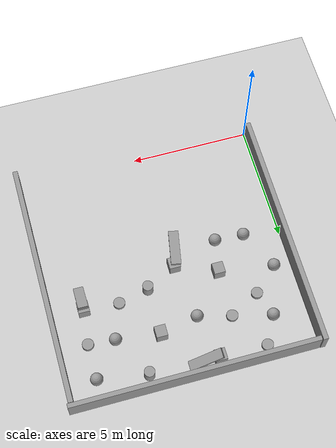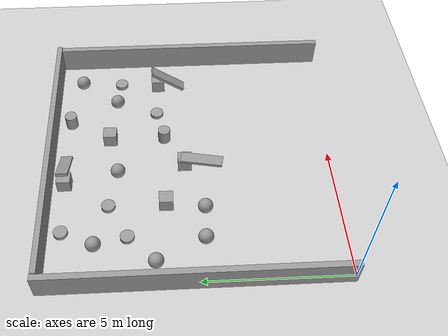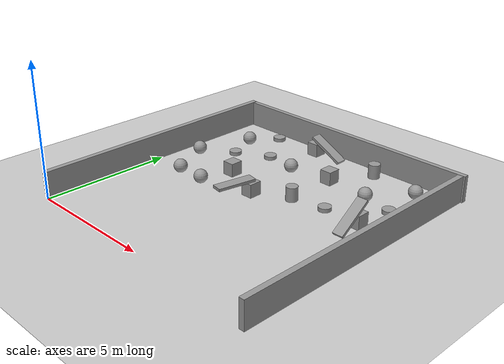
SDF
<sdf version="1.6">
 <world name="default">
  <model name="ground_plane">
   <static>1</static>
   <link name="link">
    <collision name="collision">
     <geometry><plane><normal>0 0 1</normal><size>100 100</size></plane></geometry>
     <surface><friction><ode><mu>100</mu><mu2>50</mu2></ode></friction></surface>
    </collision>
    <visual name="visual">
     <cast_shadows>0</cast_shadows>
     <geometry><plane><normal>0 0 1</normal><size>100 100</size></plane></geometry>
     <material>
      <script><uri>file://media/materials/scripts/gazebo.material</uri><name>Gazebo/Grey</name></script>
     </material>
    </visual>
   </link>
  </model>
  <model name="object4_clone">
   <link name="link">
    <inertial>
     <mass>1</mass>
     <inertia><ixx>0.1</ixx><ixy>0</ixy><ixz>0</ixz><iyy>0.1</iyy><iyz>0</iyz><izz>0.1</izz></inertia>
    </inertial>
    <visual name="visual">
     <geometry><sphere><radius>0.260368</radius></sphere></geometry>
     <material>
      <script><name>Gazebo/Grey</name><uri>file://media/materials/scripts/gazebo.material</uri></script>
      <ambient>0.3 0.3 0.3 1</ambient>
      <diffuse>0.7 0.7 0.7 1</diffuse>
      <specular>0.01 0.01 0.01 1</specular>
      <emissive>0 0 0 1</emissive>
     </material>
    </visual>
    <collision name="collision">
     <geometry><sphere><radius>0.260368</radius></sphere></geometry>
     <surface>
      <friction>
       <ode><mu>1</mu><mu2>1</mu2><fdir1>0 0 0</fdir1><slip1>0</slip1><slip2>0</slip2></ode>
       <torsional>
        <coefficient>1</coefficient>
        <patch_radius>0</patch_radius>
        <surface_radius>0</surface_radius>
        <use_patch_radius>1</use_patch_radius>
        <ode><slip>0</slip></ode>
       </torsional>
      </friction>
      <bounce><restitution_coefficient>0</restitution_coefficient><threshold>1e+06</threshold></bounce>
      <contact>
       <collide_without_contact>0</collide_without_contact>
       <collide_without_contact_bitmask>1</collide_without_contact_bitmask>
       <collide_bitmask>1</collide_bitmask>
       <ode>
        <soft_cfm>0</soft_cfm>
        <soft_erp>0.2</soft_erp>
        <kp>1e+13</kp>
        <kd>1</kd>
        <max_vel>0.01</max_vel>
        <min_depth>0</min_depth>
       </ode>
       <bullet>
        <split_impulse>1</split_impulse>
        <split_impulse_penetration_threshold>-0.01</split_impulse_penetration_threshold>
        <soft_cfm>0</soft_cfm>
        <soft_erp>0.2</soft_erp>
        <kp>1e+13</kp>
        <kd>1</kd>
       </bullet>
      </contact>
     </surface>
    </collision>
   </link>
   <static>1</static>
   <pose>2.73638 4.65874 0.260368 0 -0 0</pose>
  </model>
  <model name="object4_clone_0">
   <link name="link">
    <inertial>
     <mass>1</mass>
     <inertia><ixx>0.1</ixx><ixy>0</ixy><ixz>0</ixz><iyy>0.1</iyy><iyz>0</iyz><izz>0.1</izz></inertia>
    </inertial>
    <visual name="visual">
     <geometry><sphere><radius>0.260368</radius></sphere></geometry>
     <material>
      <script><name>Gazebo/Grey</name><uri>file://media/materials/scripts/gazebo.material</uri></script>
      <ambient>0.3 0.3 0.3 1</ambient>
      <diffuse>0.7 0.7 0.7 1</diffuse>
      <specular>0.01 0.01 0.01 1</specular>
      <emissive>0 0 0 1</emissive>
     </material>
    </visual>
    <collision name="collision">
     <geometry><sphere><radius>0.260368</radius></sphere></geometry>
     <surface>
      <friction>
       <ode><mu>1</mu><mu2>1</mu2><fdir1>0 0 0</fdir1><slip1>0</slip1><slip2>0</slip2></ode>
       <torsional>
        <coefficient>1</coefficient>
        <patch_radius>0</patch_radius>
        <surface_radius>0</surface_radius>
        <use_patch_radius>1</use_patch_radius>
        <ode><slip>0</slip></ode>
       </torsional>
      </friction>
      <bounce><restitution_coefficient>0</restitution_coefficient><threshold>1e+06</threshold></bounce>
      <contact>
       <collide_without_contact>0</collide_without_contact>
       <collide_without_contact_bitmask>1</collide_without_contact_bitmask>
       <collide_bitmask>1</collide_bitmask>
       <ode>
        <soft_cfm>0</soft_cfm>
        <soft_erp>0.2</soft_erp>
        <kp>1e+13</kp>
        <kd>1</kd>
        <max_vel>0.01</max_vel>
        <min_depth>0</min_depth>
       </ode>
       <bullet>
        <split_impulse>1</split_impulse>
        <split_impulse_penetration_threshold>-0.01</split_impulse_penetration_threshold>
        <soft_cfm>0</soft_cfm>
        <soft_erp>0.2</soft_erp>
        <kp>1e+13</kp>
        <kd>1</kd>
       </bullet>
      </contact>
     </surface>
    </collision>
   </link>
   <static>1</static>
   <pose>1.5218 4.71849 0.260368 0 -0 0</pose>
  </model>
  <model name="wall2">
   <link name="link">
    <inertial>
     <mass>1</mass>
     <inertia>
      <ixx>0.166667</ixx>
      <ixy>0</ixy>
      <ixz>0</ixz>
      <iyy>0.166667</iyy>
      <iyz>0</iyz>
      <izz>0.166667</izz>
     </inertia>
    </inertial>
    <visual name="visual">
     <geometry><box><size>0.209732 10.1924 1</size></box></geometry>
     <material>
      <script><name>Gazebo/Grey</name><uri>file://media/materials/scripts/gazebo.material</uri></script>
      <ambient>0.3 0.3 0.3 1</ambient>
      <diffuse>0.7 0.7 0.7 1</diffuse>
      <specular>0.01 0.01 0.01 1</specular>
      <emissive>0 0 0 1</emissive>
     </material>
    </visual>
    <collision name="collision">
     <geometry><box><size>0.209732 10.1924 1</size></box></geometry>
     <surface>
      <friction>
       <ode><mu>1</mu><mu2>1</mu2><fdir1>0 0 0</fdir1><slip1>0</slip1><slip2>0</slip2></ode>
       <torsional>
        <coefficient>1</coefficient>
        <patch_radius>0</patch_radius>
        <surface_radius>0</surface_radius>
        <use_patch_radius>1</use_patch_radius>
        <ode><slip>0</slip></ode>
       </torsional>
      </friction>
      <bounce><restitution_coefficient>0</restitution_coefficient><threshold>1e+06</threshold></bounce>
      <contact>
       <collide_without_contact>0</collide_without_contact>
       <collide_without_contact_bitmask>1</collide_without_contact_bitmask>
       <collide_bitmask>1</collide_bitmask>
       <ode>
        <soft_cfm>0</soft_cfm>
        <soft_erp>0.2</soft_erp>
        <kp>1e+13</kp>
        <kd>1</kd>
        <max_vel>0.01</max_vel>
        <min_depth>0</min_depth>
       </ode>
       <bullet>
        <split_impulse>1</split_impulse>
        <split_impulse_penetration_threshold>-0.01</split_impulse_penetration_threshold>
        <soft_cfm>0</soft_cfm>
        <soft_erp>0.2</soft_erp>
        <kp>1e+13</kp>
        <kd>1</kd>
       </bullet>
      </contact>
     </surface>
    </collision>
   </link>
   <static>1</static>
   <pose>-0.109062 5.11991 0.5 0 -0 0</pose>
  </model>
  <model name="wall2_clone">
   <link name="link">
    <inertial>
     <mass>1</mass>
     <inertia>
      <ixx>0.166667</ixx>
      <ixy>0</ixy>
      <ixz>0</ixz>
      <iyy>0.166667</iyy>
      <iyz>0</iyz>
      <izz>0.166667</izz>
     </inertia>
    </inertial>
    <visual name="visual">
     <geometry><box><size>0.209732 10.3294 1</size></box></geometry>
     <material>
      <script><name>Gazebo/Grey</name><uri>file://media/materials/scripts/gazebo.material</uri></script>
      <ambient>0.3 0.3 0.3 1</ambient>
      <diffuse>0.7 0.7 0.7 1</diffuse>
      <specular>0.01 0.01 0.01 1</specular>
      <emissive>0 0 0 1</emissive>
     </material>
    </visual>
    <collision name="collision">
     <geometry><box><size>0.209732 10.3294 1</size></box></geometry>
     <surface>
      <friction>
       <ode><mu>1</mu><mu2>1</mu2><fdir1>0 0 0</fdir1><slip1>0</slip1><slip2>0</slip2></ode>
       <torsional>
        <coefficient>1</coefficient>
        <patch_radius>0</patch_radius>
        <surface_radius>0</surface_radius>
        <use_patch_radius>1</use_patch_radius>
        <ode><slip>0</slip></ode>
       </torsional>
      </friction>
      <bounce><restitution_coefficient>0</restitution_coefficient><threshold>1e+06</threshold></bounce>
      <contact>
       <collide_without_contact>0</collide_without_contact>
       <collide_without_contact_bitmask>1</collide_without_contact_bitmask>
       <collide_bitmask>1</collide_bitmask>
       <ode>
        <soft_cfm>0</soft_cfm>
        <soft_erp>0.2</soft_erp>
        <kp>1e+13</kp>
        <kd>1</kd>
        <max_vel>0.01</max_vel>
        <min_depth>0</min_depth>
       </ode>
       <bullet>
        <split_impulse>1</split_impulse>
        <split_impulse_penetration_threshold>-0.01</split_impulse_penetration_threshold>
        <soft_cfm>0</soft_cfm>
        <soft_erp>0.2</soft_erp>
        <kp>1e+13</kp>
        <kd>1</kd>
       </bullet>
      </contact>
     </surface>
    </collision>
   </link>
   <static>1</static>
   <pose>10.1152 4.83597 0.5 0 -0 0</pose>
  </model>
  <model name="wall1_0">
   <link name="link">
    <inertial>
     <mass>1</mass>
     <inertia>
      <ixx>0.166667</ixx>
      <ixy>0</ixy>
      <ixz>0</ixz>
      <iyy>0.166667</iyy>
      <iyz>0</iyz>
      <izz>0.166667</izz>
     </inertia>
    </inertial>
    <visual name="visual">
     <geometry><box><size>10.251 0.189922 1</size></box></geometry>
     <material>
      <script><name>Gazebo/Grey</name><uri>file://media/materials/scripts/gazebo.material</uri></script>
      <ambient>0.3 0.3 0.3 1</ambient>
      <diffuse>0.7 0.7 0.7 1</diffuse>
      <specular>0.01 0.01 0.01 1</specular>
      <emissive>0 0 0 1</emissive>
     </material>
    </visual>
    <collision name="collision">
     <geometry><box><size>10.251 0.189922 1</size></box></geometry>
     <surface>
      <friction>
       <ode><mu>1</mu><mu2>1</mu2><fdir1>0 0 0</fdir1><slip1>0</slip1><slip2>0</slip2></ode>
       <torsional>
        <coefficient>1</coefficient>
        <patch_radius>0</patch_radius>
        <surface_radius>0</surface_radius>
        <use_patch_radius>1</use_patch_radius>
        <ode><slip>0</slip></ode>
       </torsional>
      </friction>
      <bounce><restitution_coefficient>0</restitution_coefficient><threshold>1e+06</threshold></bounce>
      <contact>
       <collide_without_contact>0</collide_without_contact>
       <collide_without_contact_bitmask>1</collide_without_contact_bitmask>
       <collide_bitmask>1</collide_bitmask>
       <ode>
        <soft_cfm>0</soft_cfm>
        <soft_erp>0.2</soft_erp>
        <kp>1e+13</kp>
        <kd>1</kd>
        <max_vel>0.01</max_vel>
        <min_depth>0</min_depth>
       </ode>
       <bullet>
        <split_impulse>1</split_impulse>
        <split_impulse_penetration_threshold>-0.01</split_impulse_penetration_threshold>
        <soft_cfm>0</soft_cfm>
        <soft_erp>0.2</soft_erp>
        <kp>1e+13</kp>
        <kd>1</kd>
       </bullet>
      </contact>
     </surface>
    </collision>
   </link>
   <static>1</static>
   <pose>5.153 10.11 0.5 0 -0 0</pose>
  </model>
  <model name="object4_clone_3">
   <link name="link">
    <inertial>
     <mass>1</mass>
     <inertia><ixx>0.1</ixx><ixy>0</ixy><ixz>0</ixz><iyy>0.1</iyy><iyz>0</iyz><izz>0.1</izz></inertia>
    </inertial>
    <visual name="visual">
     <geometry><sphere><radius>0.260368</radius></sphere></geometry>
     <material>
      <script><name>Gazebo/Grey</name><uri>file://media/materials/scripts/gazebo.material</uri></script>
      <ambient>0.3 0.3 0.3 1</ambient>
      <diffuse>0.7 0.7 0.7 1</diffuse>
      <specular>0.01 0.01 0.01 1</specular>
      <emissive>0 0 0 1</emissive>
     </material>
    </visual>
    <collision name="collision">
     <geometry><sphere><radius>0.260368</radius></sphere></geometry>
     <surface>
      <friction>
       <ode><mu>1</mu><mu2>1</mu2><fdir1>0 0 0</fdir1><slip1>0</slip1><slip2>0</slip2></ode>
       <torsional>
        <coefficient>1</coefficient>
        <patch_radius>0</patch_radius>
        <surface_radius>0</surface_radius>
        <use_patch_radius>1</use_patch_radius>
        <ode><slip>0</slip></ode>
       </torsional>
      </friction>
      <bounce><restitution_coefficient>0</restitution_coefficient><threshold>1e+06</threshold></bounce>
      <contact>
       <collide_without_contact>0</collide_without_contact>
       <collide_without_contact_bitmask>1</collide_without_contact_bitmask>
       <collide_bitmask>1</collide_bitmask>
       <ode>
        <soft_cfm>0</soft_cfm>
        <soft_erp>0.2</soft_erp>
        <kp>1e+13</kp>
        <kd>1</kd>
        <max_vel>0.01</max_vel>
        <min_depth>0</min_depth>
       </ode>
       <bullet>
        <split_impulse>1</split_impulse>
        <split_impulse_penetration_threshold>-0.01</split_impulse_penetration_threshold>
        <soft_cfm>0</soft_cfm>
        <soft_erp>0.2</soft_erp>
        <kp>1e+13</kp>
        <kd>1</kd>
       </bullet>
      </contact>
     </surface>
    </collision>
   </link>
   <static>1</static>
   <pose>7.81479 7.76646 0.247825 0 -0 0</pose>
  </model>
  <model name="object4_clone_4">
   <link name="link">
    <inertial>
     <mass>1</mass>
     <inertia><ixx>0.1</ixx><ixy>0</ixy><ixz>0</ixz><iyy>0.1</iyy><iyz>0</iyz><izz>0.1</izz></inertia>
    </inertial>
    <visual name="visual">
     <geometry><sphere><radius>0.260368</radius></sphere></geometry>
     <material>
      <script><name>Gazebo/Grey</name><uri>file://media/materials/scripts/gazebo.material</uri></script>
      <ambient>0.3 0.3 0.3 1</ambient>
      <diffuse>0.7 0.7 0.7 1</diffuse>
      <specular>0.01 0.01 0.01 1</specular>
      <emissive>0 0 0 1</emissive>
     </material>
    </visual>
    <collision name="collision">
     <geometry><sphere><radius>0.260368</radius></sphere></geometry>
     <surface>
      <friction>
       <ode><mu>1</mu><mu2>1</mu2><fdir1>0 0 0</fdir1><slip1>0</slip1><slip2>0</slip2></ode>
       <torsional>
        <coefficient>1</coefficient>
        <patch_radius>0</patch_radius>
        <surface_radius>0</surface_radius>
        <use_patch_radius>1</use_patch_radius>
        <ode><slip>0</slip></ode>
       </torsional>
      </friction>
      <bounce><restitution_coefficient>0</restitution_coefficient><threshold>1e+06</threshold></bounce>
      <contact>
       <collide_without_contact>0</collide_without_contact>
       <collide_without_contact_bitmask>1</collide_without_contact_bitmask>
       <collide_bitmask>1</collide_bitmask>
       <ode>
        <soft_cfm>0</soft_cfm>
        <soft_erp>0.2</soft_erp>
        <kp>1e+13</kp>
        <kd>1</kd>
        <max_vel>0.01</max_vel>
        <min_depth>0</min_depth>
       </ode>
       <bullet>
        <split_impulse>1</split_impulse>
        <split_impulse_penetration_threshold>-0.01</split_impulse_penetration_threshold>
        <soft_cfm>0</soft_cfm>
        <soft_erp>0.2</soft_erp>
        <kp>1e+13</kp>
        <kd>1</kd>
       </bullet>
      </contact>
     </surface>
    </collision>
   </link>
   <static>1</static>
   <pose>4.39446 7.68427 0.247825 0 -0 0</pose>
  </model>
  <model name="object4_clone_5">
   <link name="link">
    <inertial>
     <mass>1</mass>
     <inertia><ixx>0.1</ixx><ixy>0</ixy><ixz>0</ixz><iyy>0.1</iyy><iyz>0</iyz><izz>0.1</izz></inertia>
    </inertial>
    <visual name="visual">
     <geometry><sphere><radius>0.260368</radius></sphere></geometry>
     <material>
      <script><name>Gazebo/Grey</name><uri>file://media/materials/scripts/gazebo.material</uri></script>
      <ambient>0.3 0.3 0.3 1</ambient>
      <diffuse>0.7 0.7 0.7 1</diffuse>
      <specular>0.01 0.01 0.01 1</specular>
      <emissive>0 0 0 1</emissive>
     </material>
    </visual>
    <collision name="collision">
     <geometry><sphere><radius>0.260368</radius></sphere></geometry>
     <surface>
      <friction>
       <ode><mu>1</mu><mu2>1</mu2><fdir1>0 0 0</fdir1><slip1>0</slip1><slip2>0</slip2></ode>
       <torsional>
        <coefficient>1</coefficient>
        <patch_radius>0</patch_radius>
        <surface_radius>0</surface_radius>
        <use_patch_radius>1</use_patch_radius>
        <ode><slip>0</slip></ode>
       </torsional>
      </friction>
      <bounce><restitution_coefficient>0</restitution_coefficient><threshold>1e+06</threshold></bounce>
      <contact>
       <collide_without_contact>0</collide_without_contact>
       <collide_without_contact_bitmask>1</collide_without_contact_bitmask>
       <collide_bitmask>1</collide_bitmask>
       <ode>
        <soft_cfm>0</soft_cfm>
        <soft_erp>0.2</soft_erp>
        <kp>1e+13</kp>
        <kd>1</kd>
        <max_vel>0.01</max_vel>
        <min_depth>0</min_depth>
       </ode>
       <bullet>
        <split_impulse>1</split_impulse>
        <split_impulse_penetration_threshold>-0.01</split_impulse_penetration_threshold>
        <soft_cfm>0</soft_cfm>
        <soft_erp>0.2</soft_erp>
        <kp>1e+13</kp>
        <kd>1</kd>
       </bullet>
      </contact>
     </surface>
    </collision>
   </link>
   <static>1</static>
   <pose>1.40837 8.43712 0.247825 0 -0 0</pose>
  </model>
  <model name="object4_clone_6">
   <link name="link">
    <inertial>
     <mass>1</mass>
     <inertia><ixx>0.1</ixx><ixy>0</ixy><ixz>0</ixz><iyy>0.1</iyy><iyz>0</iyz><izz>0.1</izz></inertia>
    </inertial>
    <visual name="visual">
     <geometry><sphere><radius>0.260368</radius></sphere></geometry>
     <material>
      <script><name>Gazebo/Grey</name><uri>file://media/materials/scripts/gazebo.material</uri></script>
      <ambient>0.3 0.3 0.3 1</ambient>
      <diffuse>0.7 0.7 0.7 1</diffuse>
      <specular>0.01 0.01 0.01 1</specular>
      <emissive>0 0 0 1</emissive>
     </material>
    </visual>
    <collision name="collision">
     <geometry><sphere><radius>0.260368</radius></sphere></geometry>
     <surface>
      <friction>
       <ode><mu>1</mu><mu2>1</mu2><fdir1>0 0 0</fdir1><slip1>0</slip1><slip2>0</slip2></ode>
       <torsional>
        <coefficient>1</coefficient>
        <patch_radius>0</patch_radius>
        <surface_radius>0</surface_radius>
        <use_patch_radius>1</use_patch_radius>
        <ode><slip>0</slip></ode>
       </torsional>
      </friction>
      <bounce><restitution_coefficient>0</restitution_coefficient><threshold>1e+06</threshold></bounce>
      <contact>
       <collide_without_contact>0</collide_without_contact>
       <collide_without_contact_bitmask>1</collide_without_contact_bitmask>
       <collide_bitmask>1</collide_bitmask>
       <ode>
        <soft_cfm>0</soft_cfm>
        <soft_erp>0.2</soft_erp>
        <kp>1e+13</kp>
        <kd>1</kd>
        <max_vel>0.01</max_vel>
        <min_depth>0</min_depth>
       </ode>
       <bullet>
        <split_impulse>1</split_impulse>
        <split_impulse_penetration_threshold>-0.01</split_impulse_penetration_threshold>
        <soft_cfm>0</soft_cfm>
        <soft_erp>0.2</soft_erp>
        <kp>1e+13</kp>
        <kd>1</kd>
       </bullet>
      </contact>
     </surface>
    </collision>
   </link>
   <static>1</static>
   <pose>8.93097 9.16442 0.247825 0 -0 0</pose>
  </model>
  <model name="object4_clone_8">
   <link name="link">
    <inertial>
     <mass>1</mass>
     <inertia><ixx>0.1</ixx><ixy>0</ixy><ixz>0</ixz><iyy>0.1</iyy><iyz>0</iyz><izz>0.1</izz></inertia>
    </inertial>
    <visual name="visual">
     <geometry><sphere><radius>0.260368</radius></sphere></geometry>
     <material>
      <script><name>Gazebo/Grey</name><uri>file://media/materials/scripts/gazebo.material</uri></script>
      <ambient>0.3 0.3 0.3 1</ambient>
      <diffuse>0.7 0.7 0.7 1</diffuse>
      <specular>0.01 0.01 0.01 1</specular>
      <emissive>0 0 0 1</emissive>
     </material>
    </visual>
    <collision name="collision">
     <geometry><sphere><radius>0.260368</radius></sphere></geometry>
     <surface>
      <friction>
       <ode><mu>1</mu><mu2>1</mu2><fdir1>0 0 0</fdir1><slip1>0</slip1><slip2>0</slip2></ode>
       <torsional>
        <coefficient>1</coefficient>
        <patch_radius>0</patch_radius>
        <surface_radius>0</surface_radius>
        <use_patch_radius>1</use_patch_radius>
        <ode><slip>0</slip></ode>
       </torsional>
      </friction>
      <bounce><restitution_coefficient>0</restitution_coefficient><threshold>1e+06</threshold></bounce>
      <contact>
       <collide_without_contact>0</collide_without_contact>
       <collide_without_contact_bitmask>1</collide_without_contact_bitmask>
       <collide_bitmask>1</collide_bitmask>
       <ode>
        <soft_cfm>0</soft_cfm>
        <soft_erp>0.2</soft_erp>
        <kp>1e+13</kp>
        <kd>1</kd>
        <max_vel>0.01</max_vel>
        <min_depth>0</min_depth>
       </ode>
       <bullet>
        <split_impulse>1</split_impulse>
        <split_impulse_penetration_threshold>-0.01</split_impulse_penetration_threshold>
        <soft_cfm>0</soft_cfm>
        <soft_erp>0.2</soft_erp>
        <kp>1e+13</kp>
        <kd>1</kd>
       </bullet>
      </contact>
     </surface>
    </collision>
   </link>
   <static>1</static>
   <pose>0.711306 6.37888 0.247825 0 -0 0</pose>
  </model>
  <model name="object1_clone_0_clone_0">
   <link name="link">
    <inertial>
     <mass>1</mass>
     <inertia>
      <ixx>0.166667</ixx>
      <ixy>0</ixy>
      <ixz>0</ixz>
      <iyy>0.166667</iyy>
      <iyz>0</iyz>
      <izz>0.166667</izz>
     </inertia>
    </inertial>
    <visual name="visual">
     <geometry><box><size>0.462419 0.484025 0.518106</size></box></geometry>
     <material>
      <script><name>Gazebo/Grey</name><uri>file://media/materials/scripts/gazebo.material</uri></script>
      <ambient>0.3 0.3 0.3 1</ambient>
      <diffuse>0.7 0.7 0.7 1</diffuse>
      <specular>0.01 0.01 0.01 1</specular>
      <emissive>0 0 0 1</emissive>
     </material>
    </visual>
    <collision name="collision">
     <geometry><box><size>0.462419 0.484025 0.518106</size></box></geometry>
     <surface>
      <friction>
       <ode><mu>1</mu><mu2>1</mu2><fdir1>0 0 0</fdir1><slip1>0</slip1><slip2>0</slip2></ode>
       <torsional>
        <coefficient>1</coefficient>
        <patch_radius>0</patch_radius>
        <surface_radius>0</surface_radius>
        <use_patch_radius>1</use_patch_radius>
        <ode><slip>0</slip></ode>
       </torsional>
      </friction>
      <bounce><restitution_coefficient>0</restitution_coefficient><threshold>1e+06</threshold></bounce>
      <contact>
       <collide_without_contact>0</collide_without_contact>
       <collide_without_contact_bitmask>1</collide_without_contact_bitmask>
       <collide_bitmask>1</collide_bitmask>
       <ode>
        <soft_cfm>0</soft_cfm>
        <soft_erp>0.2</soft_erp>
        <kp>1e+13</kp>
        <kd>1</kd>
        <max_vel>0.01</max_vel>
        <min_depth>0</min_depth>
       </ode>
       <bullet>
        <split_impulse>1</split_impulse>
        <split_impulse_penetration_threshold>-0.01</split_impulse_penetration_threshold>
        <soft_cfm>0</soft_cfm>
        <soft_erp>0.2</soft_erp>
        <kp>1e+13</kp>
        <kd>1</kd>
       </bullet>
      </contact>
     </surface>
    </collision>
   </link>
   <static>1</static>
   <pose>8.75776 6.17844 0.259053 0 -0 0</pose>
  </model>
  <model name="object1_clone_0_clone_1">
   <link name="link">
    <inertial>
     <mass>1</mass>
     <inertia>
      <ixx>0.166667</ixx>
      <ixy>0</ixy>
      <ixz>0</ixz>
      <iyy>0.166667</iyy>
      <iyz>0</iyz>
      <izz>0.166667</izz>
     </inertia>
    </inertial>
    <visual name="visual">
     <geometry><box><size>0.462419 0.484025 0.518106</size></box></geometry>
     <material>
      <script><name>Gazebo/Grey</name><uri>file://media/materials/scripts/gazebo.material</uri></script>
      <ambient>0.3 0.3 0.3 1</ambient>
      <diffuse>0.7 0.7 0.7 1</diffuse>
      <specular>0.01 0.01 0.01 1</specular>
      <emissive>0 0 0 1</emissive>
     </material>
    </visual>
    <collision name="collision">
     <geometry><box><size>0.462419 0.484025 0.518106</size></box></geometry>
     <surface>
      <friction>
       <ode><mu>1</mu><mu2>1</mu2><fdir1>0 0 0</fdir1><slip1>0</slip1><slip2>0</slip2></ode>
       <torsional>
        <coefficient>1</coefficient>
        <patch_radius>0</patch_radius>
        <surface_radius>0</surface_radius>
        <use_patch_radius>1</use_patch_radius>
        <ode><slip>0</slip></ode>
       </torsional>
      </friction>
      <bounce><restitution_coefficient>0</restitution_coefficient><threshold>1e+06</threshold></bounce>
      <contact>
       <collide_without_contact>0</collide_without_contact>
       <collide_without_contact_bitmask>1</collide_without_contact_bitmask>
       <collide_bitmask>1</collide_bitmask>
       <ode>
        <soft_cfm>0</soft_cfm>
        <soft_erp>0.2</soft_erp>
        <kp>1e+13</kp>
        <kd>1</kd>
        <max_vel>0.01</max_vel>
        <min_depth>0</min_depth>
       </ode>
       <bullet>
        <split_impulse>1</split_impulse>
        <split_impulse_penetration_threshold>-0.01</split_impulse_penetration_threshold>
        <soft_cfm>0</soft_cfm>
        <soft_erp>0.2</soft_erp>
        <kp>1e+13</kp>
        <kd>1</kd>
       </bullet>
      </contact>
     </surface>
    </collision>
   </link>
   <static>1</static>
   <pose>6 8 0.259053 0 -0 0</pose>
  </model>
  <model name="object1_clone_0_clone_2">
   <link name="link">
    <inertial>
     <mass>1</mass>
     <inertia>
      <ixx>0.166667</ixx>
      <ixy>0</ixy>
      <ixz>0</ixz>
      <iyy>0.166667</iyy>
      <iyz>0</iyz>
      <izz>0.166667</izz>
     </inertia>
    </inertial>
    <visual name="visual">
     <geometry><box><size>0.462419 0.484025 0.518106</size></box></geometry>
     <material>
      <script><name>Gazebo/Grey</name><uri>file://media/materials/scripts/gazebo.material</uri></script>
      <ambient>0.3 0.3 0.3 1</ambient>
      <diffuse>0.7 0.7 0.7 1</diffuse>
      <specular>0.01 0.01 0.01 1</specular>
      <emissive>0 0 0 1</emissive>
     </material>
    </visual>
    <collision name="collision">
     <geometry><box><size>0.462419 0.484025 0.518106</size></box></geometry>
     <surface>
      <friction>
       <ode><mu>1</mu><mu2>1</mu2><fdir1>0 0 0</fdir1><slip1>0</slip1><slip2>0</slip2></ode>
       <torsional>
        <coefficient>1</coefficient>
        <patch_radius>0</patch_radius>
        <surface_radius>0</surface_radius>
        <use_patch_radius>1</use_patch_radius>
        <ode><slip>0</slip></ode>
       </torsional>
      </friction>
      <bounce><restitution_coefficient>0</restitution_coefficient><threshold>1e+06</threshold></bounce>
      <contact>
       <collide_without_contact>0</collide_without_contact>
       <collide_without_contact_bitmask>1</collide_without_contact_bitmask>
       <collide_bitmask>1</collide_bitmask>
       <ode>
        <soft_cfm>0</soft_cfm>
        <soft_erp>0.2</soft_erp>
        <kp>1e+13</kp>
        <kd>1</kd>
        <max_vel>0.01</max_vel>
        <min_depth>0</min_depth>
       </ode>
       <bullet>
        <split_impulse>1</split_impulse>
        <split_impulse_penetration_threshold>-0.01</split_impulse_penetration_threshold>
        <soft_cfm>0</soft_cfm>
        <soft_erp>0.2</soft_erp>
        <kp>1e+13</kp>
        <kd>1</kd>
       </bullet>
      </contact>
     </surface>
    </collision>
   </link>
   <static>1</static>
   <pose>3 6 0.259053 0 -0 0</pose>
  </model>
  <model name="object1_clone_0_clone_3">
   <link name="link">
    <inertial>
     <mass>1</mass>
     <inertia>
      <ixx>0.166667</ixx>
      <ixy>0</ixy>
      <ixz>0</ixz>
      <iyy>0.166667</iyy>
      <iyz>0</iyz>
      <izz>0.166667</izz>
     </inertia>
    </inertial>
    <visual name="visual">
     <geometry><box><size>0.462419 0.484025 0.518106</size></box></geometry>
     <material>
      <script><name>Gazebo/Grey</name><uri>file://media/materials/scripts/gazebo.material</uri></script>
      <ambient>0.3 0.3 0.3 1</ambient>
      <diffuse>0.7 0.7 0.7 1</diffuse>
      <specular>0.01 0.01 0.01 1</specular>
      <emissive>0 0 0 1</emissive>
     </material>
    </visual>
    <collision name="collision">
     <geometry><box><size>0.462419 0.484025 0.518106</size></box></geometry>
     <surface>
      <friction>
       <ode><mu>1</mu><mu2>1</mu2><fdir1>0 0 0</fdir1><slip1>0</slip1><slip2>0</slip2></ode>
       <torsional>
        <coefficient>1</coefficient>
        <patch_radius>0</patch_radius>
        <surface_radius>0</surface_radius>
        <use_patch_radius>1</use_patch_radius>
        <ode><slip>0</slip></ode>
       </torsional>
      </friction>
      <bounce><restitution_coefficient>0</restitution_coefficient><threshold>1e+06</threshold></bounce>
      <contact>
       <collide_without_contact>0</collide_without_contact>
       <collide_without_contact_bitmask>1</collide_without_contact_bitmask>
       <collide_bitmask>1</collide_bitmask>
       <ode>
        <soft_cfm>0</soft_cfm>
        <soft_erp>0.2</soft_erp>
        <kp>1e+13</kp>
        <kd>1</kd>
        <max_vel>0.01</max_vel>
        <min_depth>0</min_depth>
       </ode>
       <bullet>
        <split_impulse>1</split_impulse>
        <split_impulse_penetration_threshold>-0.01</split_impulse_penetration_threshold>
        <soft_cfm>0</soft_cfm>
        <soft_erp>0.2</soft_erp>
        <kp>1e+13</kp>
        <kd>1</kd>
       </bullet>
      </contact>
     </surface>
    </collision>
   </link>
   <static>1</static>
   <pose>3.992 9.56642 0.259053 0 -0 0</pose>
  </model>
  <model name="object1_clone_0_clone_4">
   <link name="link">
    <inertial>
     <mass>1</mass>
     <inertia>
      <ixx>0.166667</ixx>
      <ixy>0</ixy>
      <ixz>0</ixz>
      <iyy>0.166667</iyy>
      <iyz>0</iyz>
      <izz>0.166667</izz>
     </inertia>
    </inertial>
    <visual name="visual">
     <geometry><box><size>0.462419 0.484025 0.518106</size></box></geometry>
     <material>
      <script><name>Gazebo/Grey</name><uri>file://media/materials/scripts/gazebo.material</uri></script>
      <ambient>0.3 0.3 0.3 1</ambient>
      <diffuse>0.7 0.7 0.7 1</diffuse>
      <specular>0.01 0.01 0.01 1</specular>
      <emissive>0 0 0 1</emissive>
     </material>
    </visual>
    <collision name="collision">
     <geometry><box><size>0.462419 0.484025 0.518106</size></box></geometry>
     <surface>
      <friction>
       <ode><mu>1</mu><mu2>1</mu2><fdir1>0 0 0</fdir1><slip1>0</slip1><slip2>0</slip2></ode>
       <torsional>
        <coefficient>1</coefficient>
        <patch_radius>0</patch_radius>
        <surface_radius>0</surface_radius>
        <use_patch_radius>1</use_patch_radius>
        <ode><slip>0</slip></ode>
       </torsional>
      </friction>
      <bounce><restitution_coefficient>0</restitution_coefficient><threshold>1e+06</threshold></bounce>
      <contact>
       <collide_without_contact>0</collide_without_contact>
       <collide_without_contact_bitmask>1</collide_without_contact_bitmask>
       <collide_bitmask>1</collide_bitmask>
       <ode>
        <soft_cfm>0</soft_cfm>
        <soft_erp>0.2</soft_erp>
        <kp>1e+13</kp>
        <kd>1</kd>
        <max_vel>0.01</max_vel>
        <min_depth>0</min_depth>
       </ode>
       <bullet>
        <split_impulse>1</split_impulse>
        <split_impulse_penetration_threshold>-0.01</split_impulse_penetration_threshold>
        <soft_cfm>0</soft_cfm>
        <soft_erp>0.2</soft_erp>
        <kp>1e+13</kp>
        <kd>1</kd>
       </bullet>
      </contact>
     </surface>
    </collision>
   </link>
   <static>1</static>
   <pose>4.7008 5.29069 0.259053 0 -0 0</pose>
  </model>
  <model name="object5_clone_1">
   <link name="link">
    <inertial>
     <mass>1</mass>
     <inertia><ixx>0.145833</ixx><ixy>0</ixy><ixz>0</ixz><iyy>0.145833</iyy><iyz>0</iyz><izz>0.125</izz></inertia>
    </inertial>
    <visual name="visual">
     <geometry><cylinder><radius>0.221555</radius><length>0.542695</length></cylinder></geometry>
     <material>
      <script><name>Gazebo/Grey</name><uri>file://media/materials/scripts/gazebo.material</uri></script>
      <ambient>0.3 0.3 0.3 1</ambient>
      <diffuse>0.7 0.7 0.7 1</diffuse>
      <specular>0.01 0.01 0.01 1</specular>
      <emissive>0 0 0 1</emissive>
     </material>
    </visual>
    <collision name="collision">
     <geometry><cylinder><radius>0.221555</radius><length>0.542695</length></cylinder></geometry>
     <surface>
      <friction>
       <ode><mu>1</mu><mu2>1</mu2><fdir1>0 0 0</fdir1><slip1>0</slip1><slip2>0</slip2></ode>
       <torsional>
        <coefficient>1</coefficient>
        <patch_radius>0</patch_radius>
        <surface_radius>0</surface_radius>
        <use_patch_radius>1</use_patch_radius>
        <ode><slip>0</slip></ode>
       </torsional>
      </friction>
      <bounce><restitution_coefficient>0</restitution_coefficient><threshold>1e+06</threshold></bounce>
      <contact>
       <collide_without_contact>0</collide_without_contact>
       <collide_without_contact_bitmask>1</collide_without_contact_bitmask>
       <collide_bitmask>1</collide_bitmask>
       <ode>
        <soft_cfm>0</soft_cfm>
        <soft_erp>0.2</soft_erp>
        <kp>1e+13</kp>
        <kd>1</kd>
        <max_vel>0.01</max_vel>
        <min_depth>0</min_depth>
       </ode>
       <bullet>
        <split_impulse>1</split_impulse>
        <split_impulse_penetration_threshold>-0.01</split_impulse_penetration_threshold>
        <soft_cfm>0</soft_cfm>
        <soft_erp>0.2</soft_erp>
        <kp>1e+13</kp>
        <kd>1</kd>
       </bullet>
      </contact>
     </surface>
    </collision>
   </link>
   <static>1</static>
   <pose>6 6 0.271347 0 -0 0</pose>
  </model>
  <model name="object5_clone_4">
   <link name="link">
    <inertial>
     <mass>1</mass>
     <inertia><ixx>0.145833</ixx><ixy>0</ixy><ixz>0</ixz><iyy>0.145833</iyy><iyz>0</iyz><izz>0.125</izz></inertia>
    </inertial>
    <visual name="visual">
     <geometry><cylinder><radius>0.221555</radius><length>0.542695</length></cylinder></geometry>
     <material>
      <script><name>Gazebo/Grey</name><uri>file://media/materials/scripts/gazebo.material</uri></script>
      <ambient>0.3 0.3 0.3 1</ambient>
      <diffuse>0.7 0.7 0.7 1</diffuse>
      <specular>0.01 0.01 0.01 1</specular>
      <emissive>0 0 0 1</emissive>
     </material>
    </visual>
    <collision name="collision">
     <geometry><cylinder><radius>0.221555</radius><length>0.542695</length></cylinder></geometry>
     <surface>
      <friction>
       <ode><mu>1</mu><mu2>1</mu2><fdir1>0 0 0</fdir1><slip1>0</slip1><slip2>0</slip2></ode>
       <torsional>
        <coefficient>1</coefficient>
        <patch_radius>0</patch_radius>
        <surface_radius>0</surface_radius>
        <use_patch_radius>1</use_patch_radius>
        <ode><slip>0</slip></ode>
       </torsional>
      </friction>
      <bounce><restitution_coefficient>0</restitution_coefficient><threshold>1e+06</threshold></bounce>
      <contact>
       <collide_without_contact>0</collide_without_contact>
       <collide_without_contact_bitmask>1</collide_without_contact_bitmask>
       <collide_bitmask>1</collide_bitmask>
       <ode>
        <soft_cfm>0</soft_cfm>
        <soft_erp>0.2</soft_erp>
        <kp>1e+13</kp>
        <kd>1</kd>
        <max_vel>0.01</max_vel>
        <min_depth>0</min_depth>
       </ode>
       <bullet>
        <split_impulse>1</split_impulse>
        <split_impulse_penetration_threshold>-0.01</split_impulse_penetration_threshold>
        <soft_cfm>0</soft_cfm>
        <soft_erp>0.2</soft_erp>
        <kp>1e+13</kp>
        <kd>1</kd>
       </bullet>
      </contact>
     </surface>
    </collision>
   </link>
   <static>1</static>
   <pose>6.87379 9.50201 0.271347 0 -0 0</pose>
  </model>
  <model name="object6_clone_clone_1">
   <link name="link">
    <inertial>
     <mass>1</mass>
     <inertia><ixx>0.145833</ixx><ixy>0</ixy><ixz>0</ixz><iyy>0.145833</iyy><iyz>0</iyz><izz>0.125</izz></inertia>
    </inertial>
    <visual name="visual">
     <geometry><cylinder><radius>0.240804</radius><length>0.144464</length></cylinder></geometry>
     <material>
      <script><name>Gazebo/Grey</name><uri>file://media/materials/scripts/gazebo.material</uri></script>
      <ambient>0.3 0.3 0.3 1</ambient>
      <diffuse>0.7 0.7 0.7 1</diffuse>
      <specular>0.01 0.01 0.01 1</specular>
      <emissive>0 0 0 1</emissive>
     </material>
    </visual>
    <collision name="collision">
     <geometry><cylinder><radius>0.240804</radius><length>0.144464</length></cylinder></geometry>
     <surface>
      <friction>
       <ode><mu>1</mu><mu2>1</mu2><fdir1>0 0 0</fdir1><slip1>0</slip1><slip2>0</slip2></ode>
       <torsional>
        <coefficient>1</coefficient>
        <patch_radius>0</patch_radius>
        <surface_radius>0</surface_radius>
        <use_patch_radius>1</use_patch_radius>
        <ode><slip>0</slip></ode>
       </torsional>
      </friction>
      <bounce><restitution_coefficient>0</restitution_coefficient><threshold>1e+06</threshold></bounce>
      <contact>
       <collide_without_contact>0</collide_without_contact>
       <collide_without_contact_bitmask>1</collide_without_contact_bitmask>
       <collide_bitmask>1</collide_bitmask>
       <ode>
        <soft_cfm>0</soft_cfm>
        <soft_erp>0.2</soft_erp>
        <kp>1e+13</kp>
        <kd>1</kd>
        <max_vel>0.01</max_vel>
        <min_depth>0</min_depth>
       </ode>
       <bullet>
        <split_impulse>1</split_impulse>
        <split_impulse_penetration_threshold>-0.01</split_impulse_penetration_threshold>
        <soft_cfm>0</soft_cfm>
        <soft_erp>0.2</soft_erp>
        <kp>1e+13</kp>
        <kd>1</kd>
       </bullet>
      </contact>
     </surface>
    </collision>
   </link>
   <static>1</static>
   <pose>7.28145 6.26011 0.072232 0 -0 0</pose>
  </model>
  <model name="object6_clone_clone_2">
   <link name="link">
    <inertial>
     <mass>1</mass>
     <inertia><ixx>0.145833</ixx><ixy>0</ixy><ixz>0</ixz><iyy>0.145833</iyy><iyz>0</iyz><izz>0.125</izz></inertia>
    </inertial>
    <visual name="visual">
     <geometry><cylinder><radius>0.240804</radius><length>0.144464</length></cylinder></geometry>
     <material>
      <script><name>Gazebo/Grey</name><uri>file://media/materials/scripts/gazebo.material</uri></script>
      <ambient>0.3 0.3 0.3 1</ambient>
      <diffuse>0.7 0.7 0.7 1</diffuse>
      <specular>0.01 0.01 0.01 1</specular>
      <emissive>0 0 0 1</emissive>
     </material>
    </visual>
    <collision name="collision">
     <geometry><cylinder><radius>0.240804</radius><length>0.144464</length></cylinder></geometry>
     <surface>
      <friction>
       <ode><mu>1</mu><mu2>1</mu2><fdir1>0 0 0</fdir1><slip1>0</slip1><slip2>0</slip2></ode>
       <torsional>
        <coefficient>1</coefficient>
        <patch_radius>0</patch_radius>
        <surface_radius>0</surface_radius>
        <use_patch_radius>1</use_patch_radius>
        <ode><slip>0</slip></ode>
       </torsional>
      </friction>
      <bounce><restitution_coefficient>0</restitution_coefficient><threshold>1e+06</threshold></bounce>
      <contact>
       <collide_without_contact>0</collide_without_contact>
       <collide_without_contact_bitmask>1</collide_without_contact_bitmask>
       <collide_bitmask>1</collide_bitmask>
       <ode>
        <soft_cfm>0</soft_cfm>
        <soft_erp>0.2</soft_erp>
        <kp>1e+13</kp>
        <kd>1</kd>
        <max_vel>0.01</max_vel>
        <min_depth>0</min_depth>
       </ode>
       <bullet>
        <split_impulse>1</split_impulse>
        <split_impulse_penetration_threshold>-0.01</split_impulse_penetration_threshold>
        <soft_cfm>0</soft_cfm>
        <soft_erp>0.2</soft_erp>
        <kp>1e+13</kp>
        <kd>1</kd>
       </bullet>
      </contact>
     </surface>
    </collision>
   </link>
   <static>1</static>
   <pose>1.73653 7.33197 0.072232 0 -0 0</pose>
  </model>
  <model name="object6_clone_clone_3">
   <link name="link">
    <inertial>
     <mass>1</mass>
     <inertia><ixx>0.145833</ixx><ixy>0</ixy><ixz>0</ixz><iyy>0.145833</iyy><iyz>0</iyz><izz>0.125</izz></inertia>
    </inertial>
    <visual name="visual">
     <geometry><cylinder><radius>0.240804</radius><length>0.144464</length></cylinder></geometry>
     <material>
      <script><name>Gazebo/Grey</name><uri>file://media/materials/scripts/gazebo.material</uri></script>
      <ambient>0.3 0.3 0.3 1</ambient>
      <diffuse>0.7 0.7 0.7 1</diffuse>
      <specular>0.01 0.01 0.01 1</specular>
      <emissive>0 0 0 1</emissive>
     </material>
    </visual>
    <collision name="collision">
     <geometry><cylinder><radius>0.240804</radius><length>0.144464</length></cylinder></geometry>
     <surface>
      <friction>
       <ode><mu>1</mu><mu2>1</mu2><fdir1>0 0 0</fdir1><slip1>0</slip1><slip2>0</slip2></ode>
       <torsional>
        <coefficient>1</coefficient>
        <patch_radius>0</patch_radius>
        <surface_radius>0</surface_radius>
        <use_patch_radius>1</use_patch_radius>
        <ode><slip>0</slip></ode>
       </torsional>
      </friction>
      <bounce><restitution_coefficient>0</restitution_coefficient><threshold>1e+06</threshold></bounce>
      <contact>
       <collide_without_contact>0</collide_without_contact>
       <collide_without_contact_bitmask>1</collide_without_contact_bitmask>
       <collide_bitmask>1</collide_bitmask>
       <ode>
        <soft_cfm>0</soft_cfm>
        <soft_erp>0.2</soft_erp>
        <kp>1e+13</kp>
        <kd>1</kd>
        <max_vel>0.01</max_vel>
        <min_depth>0</min_depth>
       </ode>
       <bullet>
        <split_impulse>1</split_impulse>
        <split_impulse_penetration_threshold>-0.01</split_impulse_penetration_threshold>
        <soft_cfm>0</soft_cfm>
        <soft_erp>0.2</soft_erp>
        <kp>1e+13</kp>
        <kd>1</kd>
       </bullet>
      </contact>
     </surface>
    </collision>
   </link>
   <static>1</static>
   <pose>3 8 0.072232 0 -0 0</pose>
  </model>
  <model name="object6_clone_clone_4">
   <link name="link">
    <inertial>
     <mass>1</mass>
     <inertia><ixx>0.145833</ixx><ixy>0</ixy><ixz>0</ixz><iyy>0.145833</iyy><iyz>0</iyz><izz>0.125</izz></inertia>
    </inertial>
    <visual name="visual">
     <geometry><cylinder><radius>0.240804</radius><length>0.144464</length></cylinder></geometry>
     <material>
      <script><name>Gazebo/Grey</name><uri>file://media/materials/scripts/gazebo.material</uri></script>
      <ambient>0.3 0.3 0.3 1</ambient>
      <diffuse>0.7 0.7 0.7 1</diffuse>
      <specular>0.01 0.01 0.01 1</specular>
      <emissive>0 0 0 1</emissive>
     </material>
    </visual>
    <collision name="collision">
     <geometry><cylinder><radius>0.240804</radius><length>0.144464</length></cylinder></geometry>
     <surface>
      <friction>
       <ode><mu>1</mu><mu2>1</mu2><fdir1>0 0 0</fdir1><slip1>0</slip1><slip2>0</slip2></ode>
       <torsional>
        <coefficient>1</coefficient>
        <patch_radius>0</patch_radius>
        <surface_radius>0</surface_radius>
        <use_patch_radius>1</use_patch_radius>
        <ode><slip>0</slip></ode>
       </torsional>
      </friction>
      <bounce><restitution_coefficient>0</restitution_coefficient><threshold>1e+06</threshold></bounce>
      <contact>
       <collide_without_contact>0</collide_without_contact>
       <collide_without_contact_bitmask>1</collide_without_contact_bitmask>
       <collide_bitmask>1</collide_bitmask>
       <ode>
        <soft_cfm>0</soft_cfm>
        <soft_erp>0.2</soft_erp>
        <kp>1e+13</kp>
        <kd>1</kd>
        <max_vel>0.01</max_vel>
        <min_depth>0</min_depth>
       </ode>
       <bullet>
        <split_impulse>1</split_impulse>
        <split_impulse_penetration_threshold>-0.01</split_impulse_penetration_threshold>
        <soft_cfm>0</soft_cfm>
        <soft_erp>0.2</soft_erp>
        <kp>1e+13</kp>
        <kd>1</kd>
       </bullet>
      </contact>
     </surface>
    </collision>
   </link>
   <static>1</static>
   <pose>8.92861 7.63992 0.072232 0 -0 0</pose>
  </model>
  <model name="object6_clone_clone_5">
   <link name="link">
    <inertial>
     <mass>1</mass>
     <inertia><ixx>0.145833</ixx><ixy>0</ixy><ixz>0</ixz><iyy>0.145833</iyy><iyz>0</iyz><izz>0.125</izz></inertia>
    </inertial>
    <visual name="visual">
     <geometry><cylinder><radius>0.240804</radius><length>0.144464</length></cylinder></geometry>
     <material>
      <script><name>Gazebo/Grey</name><uri>file://media/materials/scripts/gazebo.material</uri></script>
      <ambient>0.3 0.3 0.3 1</ambient>
      <diffuse>0.7 0.7 0.7 1</diffuse>
      <specular>0.01 0.01 0.01 1</specular>
      <emissive>0 0 0 1</emissive>
     </material>
    </visual>
    <collision name="collision">
     <geometry><cylinder><radius>0.240804</radius><length>0.144464</length></cylinder></geometry>
     <surface>
      <friction>
       <ode><mu>1</mu><mu2>1</mu2><fdir1>0 0 0</fdir1><slip1>0</slip1><slip2>0</slip2></ode>
       <torsional>
        <coefficient>1</coefficient>
        <patch_radius>0</patch_radius>
        <surface_radius>0</surface_radius>
        <use_patch_radius>1</use_patch_radius>
        <ode><slip>0</slip></ode>
       </torsional>
      </friction>
      <bounce><restitution_coefficient>0</restitution_coefficient><threshold>1e+06</threshold></bounce>
      <contact>
       <collide_without_contact>0</collide_without_contact>
       <collide_without_contact_bitmask>1</collide_without_contact_bitmask>
       <collide_bitmask>1</collide_bitmask>
       <ode>
        <soft_cfm>0</soft_cfm>
        <soft_erp>0.2</soft_erp>
        <kp>1e+13</kp>
        <kd>1</kd>
        <max_vel>0.01</max_vel>
        <min_depth>0</min_depth>
       </ode>
       <bullet>
        <split_impulse>1</split_impulse>
        <split_impulse_penetration_threshold>-0.01</split_impulse_penetration_threshold>
        <soft_cfm>0</soft_cfm>
        <soft_erp>0.2</soft_erp>
        <kp>1e+13</kp>
        <kd>1</kd>
       </bullet>
      </contact>
     </surface>
    </collision>
   </link>
   <static>1</static>
   <pose>2 9.56377 0.072232 0 -0 0</pose>
  </model>
  <model name="unit_box">
   <pose>4.58902 9.5892 0.388039 -3e-06 0.476767 -1e-06</pose>
   <link name="link">
    <inertial>
     <mass>1</mass>
     <inertia>
      <ixx>0.166667</ixx>
      <ixy>0</ixy>
      <ixz>0</ixz>
      <iyy>0.166667</iyy>
      <iyz>0</iyz>
      <izz>0.166667</izz>
     </inertia>
    </inertial>
    <collision name="collision"><geometry><box><size>1.48855 0.417991 0.10464</size></box></geometry></collision>
    <visual name="visual">
     <geometry><box><size>1.48855 0.417991 0.10464</size></box></geometry>
     <material>
      <script><name>Gazebo/Grey</name><uri>file://media/materials/scripts/gazebo.material</uri></script>
     </material>
    </visual>
   </link>
  </model>
  <model name="unit_box_clone_clone">
   <pose>8.75593 5.78355 0.473686 -0.000105 0.617632 -1.57097</pose>
   <link name="link">
    <inertial>
     <mass>1</mass>
     <inertia>
      <ixx>0.166667</ixx>
      <ixy>0</ixy>
      <ixz>0</ixz>
      <iyy>0.166667</iyy>
      <iyz>0</iyz>
      <izz>0.166667</izz>
     </inertia>
    </inertial>
    <collision name="collision"><geometry><box><size>1.48855 0.417991 0.10464</size></box></geometry></collision>
    <visual name="visual">
     <geometry><box><size>1.48855 0.417991 0.10464</size></box></geometry>
     <material>
      <script><name>Gazebo/Grey</name><uri>file://media/materials/scripts/gazebo.material</uri></script>
     </material>
    </visual>
   </link>
  </model>
  <model name="unit_box_clone_clone_clone">
   <pose>4.49992 4.69091 0.570426 0 0 -1.75779</pose>
   <link name="link">
    <inertial>
     <mass>1</mass>
     <inertia>
      <ixx>0.166667</ixx>
      <ixy>0</ixy>
      <ixz>0</ixz>
      <iyy>0.166667</iyy>
      <iyz>0</iyz>
      <izz>0.166667</izz>
     </inertia>
    </inertial>
    <collision name="collision"><geometry><box><size>1.48855 0.417991 0.10464</size></box></geometry></collision>
    <visual name="visual">
     <geometry><box><size>1.48855 0.417991 0.10464</size></box></geometry>
     <material>
      <script><name>Gazebo/Grey</name><uri>file://media/materials/scripts/gazebo.material</uri></script>
     </material>
    </visual>
   </link>
  </model>
 </world>
</sdf>
